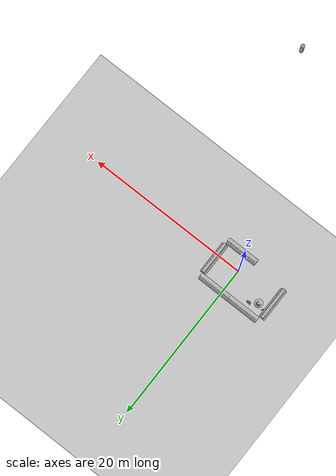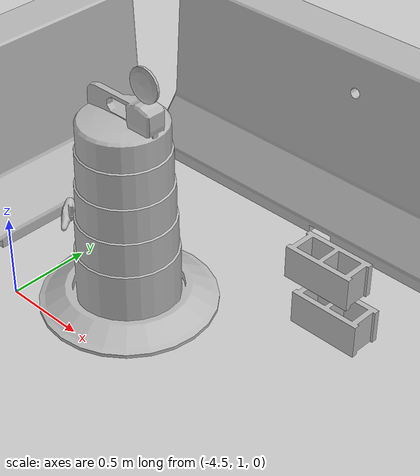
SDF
<sdf version="1.4">
 <world name="default">
  <light name="sun" type="directional">
   <pose>0 0 10 0 -0 0</pose>
   <diffuse>0.8 0.8 0.8 1</diffuse>
   <specular>0.2 0.2 0.2 1</specular>
   <attenuation>
    <range>1000</range>
    <constant>0.9</constant>
    <linear>0.01</linear>
    <quadratic>0.001</quadratic>
   </attenuation>
   <direction>-0.5 0.1 -0.9</direction>
  </light>
  <model name="ground_plane">
   <static>1</static>
   <link name="link">
    <collision name="collision">
     <geometry><plane><normal>0 0 1</normal><size>100 100</size></plane></geometry>
     <surface><friction><ode><mu>100</mu><mu2>50</mu2></ode></friction></surface>
    </collision>
    <visual name="visual">
     <cast_shadows>0</cast_shadows>
     <geometry><plane><normal>0 0 1</normal><size>100 100</size></plane></geometry>
     <material>
      <script><uri>file://media/materials/scripts/gazebo.material</uri><name>Gazebo/Grey</name></script>
     </material>
    </visual>
    <velocity_decay><linear>0</linear><angular>0</angular></velocity_decay>
   </link>
  </model>
  <physics type="ode">
   <max_step_size>0.01</max_step_size>
   <real_time_factor>1</real_time_factor>
   <real_time_update_rate>100</real_time_update_rate>
   <gravity>0 0 -9.8</gravity>
  </physics>
  <scene><ambient>0.4 0.4 0.4 1</ambient><background>0.7 0.7 0.7 1</background><shadows>1</shadows></scene>
  <model name="unit_cylinder_1">
   <pose>1.0 0.0 100.0 0.0 0.0 0.0</pose>
   <link name="link">
    <inertial>
     <mass>0.01</mass>
     <inertia><ixx>1</ixx><ixy>0</ixy><ixz>0</ixz><iyy>1</iyy><iyz>0</iyz><izz>1</izz></inertia>
    </inertial>
    <collision name="collision">
     <geometry><cylinder><radius>0.1</radius><length>1.00</length></cylinder></geometry>
    </collision>
    <visual name="visual">
     <geometry><cylinder><radius>0.1</radius><length>1.00</length></cylinder></geometry>
     <material>
      <script><uri>file://media/materials/scripts/gazebo.material</uri><name>Gazebo/Grey</name></script>
     </material>
    </visual>
    <velocity_decay><linear>0</linear><angular>0</angular></velocity_decay>
   </link>
   <static>0</static>
  </model>
  <model name="jersey_barrier">
   <static>1</static>
   <link name="link">
    <visual name="visual">
     <geometry><mesh><uri>model://jersey_barrier/meshes/jersey_barrier.dae</uri></mesh></geometry>
    </visual>
    <collision name="upright">
     <pose>0 0 0.5715 0 -0 0</pose>
     <geometry><box><size>4.06542 0.3063 1.143</size></box></geometry>
    </collision>
    <collision name="base">
     <pose>0 0 0.032258 0 -0 0</pose>
     <geometry><box><size>4.06542 0.8107 0.064516</size></box></geometry>
    </collision>
    <collision name="base2">
     <pose>0 0 0.1 0 -0 0</pose>
     <geometry><box><size>4.06542 0.65 0.1</size></box></geometry>
    </collision>
    <collision name="base3">
     <pose>0 0 0.2 0 -0 0</pose>
     <geometry><box><size>4.06542 0.5 0.1</size></box></geometry>
    </collision>
    <collision name="left-angle">
     <pose>0 -0.224 0.2401 0.9 -0 0</pose>
     <geometry><box><size>4.06542 0.5 0.064516</size></box></geometry>
    </collision>
    <collision name="right-angle">
     <pose>0 0.224 0.2401 -0.9 0 0</pose>
     <geometry><box><size>4.06542 0.5 0.064516</size></box></geometry>
    </collision>
    <velocity_decay><linear>0</linear><angular>0</angular></velocity_decay>
   </link>
   <pose>1 -2 0 0 -0 0</pose>
  </model>
  <model name="jersey_barrier_0">
   <static>1</static>
   <link name="link">
    <visual name="visual">
     <geometry><mesh><uri>model://jersey_barrier/meshes/jersey_barrier.dae</uri></mesh></geometry>
    </visual>
    <collision name="upright">
     <pose>0 0 0.5715 0 -0 0</pose>
     <geometry><box><size>4.06542 0.3063 1.143</size></box></geometry>
    </collision>
    <collision name="base">
     <pose>0 0 0.032258 0 -0 0</pose>
     <geometry><box><size>4.06542 0.8107 0.064516</size></box></geometry>
    </collision>
    <collision name="base2">
     <pose>0 0 0.1 0 -0 0</pose>
     <geometry><box><size>4.06542 0.65 0.1</size></box></geometry>
    </collision>
    <collision name="base3">
     <pose>0 0 0.2 0 -0 0</pose>
     <geometry><box><size>4.06542 0.5 0.1</size></box></geometry>
    </collision>
    <collision name="left-angle">
     <pose>0 -0.224 0.2401 0.9 -0 0</pose>
     <geometry><box><size>4.06542 0.5 0.064516</size></box></geometry>
    </collision>
    <collision name="right-angle">
     <pose>0 0.224 0.2401 -0.9 0 0</pose>
     <geometry><box><size>4.06542 0.5 0.064516</size></box></geometry>
    </collision>
    <velocity_decay><linear>0</linear><angular>0</angular></velocity_decay>
   </link>
   <pose>3 0.572542 0 0 0 -1.5708</pose>
  </model>
  <model name="jersey_barrier_1">
   <static>1</static>
   <link name="link">
    <visual name="visual">
     <geometry><mesh><uri>model://jersey_barrier/meshes/jersey_barrier.dae</uri></mesh></geometry>
    </visual>
    <collision name="upright">
     <pose>0 0 0.5715 0 -0 0</pose>
     <geometry><box><size>4.06542 0.3063 1.143</size></box></geometry>
    </collision>
    <collision name="base">
     <pose>0 0 0.032258 0 -0 0</pose>
     <geometry><box><size>4.06542 0.8107 0.064516</size></box></geometry>
    </collision>
    <collision name="base2">
     <pose>0 0 0.1 0 -0 0</pose>
     <geometry><box><size>4.06542 0.65 0.1</size></box></geometry>
    </collision>
    <collision name="base3">
     <pose>0 0 0.2 0 -0 0</pose>
     <geometry><box><size>4.06542 0.5 0.1</size></box></geometry>
    </collision>
    <collision name="left-angle">
     <pose>0 -0.224 0.2401 0.9 -0 0</pose>
     <geometry><box><size>4.06542 0.5 0.064516</size></box></geometry>
    </collision>
    <collision name="right-angle">
     <pose>0 0.224 0.2401 -0.9 0 0</pose>
     <geometry><box><size>4.06542 0.5 0.064516</size></box></geometry>
    </collision>
    <velocity_decay><linear>0</linear><angular>0</angular></velocity_decay>
   </link>
   <pose>1 3 0 0 -0 0</pose>
  </model>
  <model name="jersey_barrier_2">
   <static>1</static>
   <link name="link">
    <visual name="visual">
     <geometry><mesh><uri>model://jersey_barrier/meshes/jersey_barrier.dae</uri></mesh></geometry>
    </visual>
    <collision name="upright">
     <pose>0 0 0.5715 0 -0 0</pose>
     <geometry><box><size>4.06542 0.3063 1.143</size></box></geometry>
    </collision>
    <collision name="base">
     <pose>0 0 0.032258 0 -0 0</pose>
     <geometry><box><size>4.06542 0.8107 0.064516</size></box></geometry>
    </collision>
    <collision name="base2">
     <pose>0 0 0.1 0 -0 0</pose>
     <geometry><box><size>4.06542 0.65 0.1</size></box></geometry>
    </collision>
    <collision name="base3">
     <pose>0 0 0.2 0 -0 0</pose>
     <geometry><box><size>4.06542 0.5 0.1</size></box></geometry>
    </collision>
    <collision name="left-angle">
     <pose>0 -0.224 0.2401 0.9 -0 0</pose>
     <geometry><box><size>4.06542 0.5 0.064516</size></box></geometry>
    </collision>
    <collision name="right-angle">
     <pose>0 0.224 0.2401 -0.9 0 0</pose>
     <geometry><box><size>4.06542 0.5 0.064516</size></box></geometry>
    </collision>
    <velocity_decay><linear>0</linear><angular>0</angular></velocity_decay>
   </link>
   <pose>-3 3 0 0 -0 0</pose>
  </model>
  <model name="jersey_barrier_3">
   <static>1</static>
   <link name="link">
    <visual name="visual">
     <geometry><mesh><uri>model://jersey_barrier/meshes/jersey_barrier.dae</uri></mesh></geometry>
    </visual>
    <collision name="upright">
     <pose>0 0 0.5715 0 -0 0</pose>
     <geometry><box><size>4.06542 0.3063 1.143</size></box></geometry>
    </collision>
    <collision name="base">
     <pose>0 0 0.032258 0 -0 0</pose>
     <geometry><box><size>4.06542 0.8107 0.064516</size></box></geometry>
    </collision>
    <collision name="base2">
     <pose>0 0 0.1 0 -0 0</pose>
     <geometry><box><size>4.06542 0.65 0.1</size></box></geometry>
    </collision>
    <collision name="base3">
     <pose>0 0 0.2 0 -0 0</pose>
     <geometry><box><size>4.06542 0.5 0.1</size></box></geometry>
    </collision>
    <collision name="left-angle">
     <pose>0 -0.224 0.2401 0.9 -0 0</pose>
     <geometry><box><size>4.06542 0.5 0.064516</size></box></geometry>
    </collision>
    <collision name="right-angle">
     <pose>0 0.224 0.2401 -0.9 0 0</pose>
     <geometry><box><size>4.06542 0.5 0.064516</size></box></geometry>
    </collision>
    <velocity_decay><linear>0</linear><angular>0</angular></velocity_decay>
   </link>
   <pose>-5.28026 0.532423 0 0 -0 1.5708</pose>
  </model>
  <model name="Construction Barrel">
   <link name="link">
    <inertial>
     <pose>0 0 0.4 0 -0 0</pose>
     <mass>500</mass>
     <inertia><ixx>51.2096</ixx><iyy>51.2096</iyy><izz>25</izz><ixy>0</ixy><ixz>0</ixz><iyz>0</iyz></inertia>
    </inertial>
    <collision name="collision">
     <geometry><mesh><uri>model://construction_barrel/meshes/construction_barrel.dae</uri></mesh></geometry>
    </collision>
    <visual name="visual">
     <geometry><mesh><uri>model://construction_barrel/meshes/construction_barrel.dae</uri></mesh></geometry>
    </visual>
    <velocity_decay><linear>0</linear><angular>0</angular></velocity_decay>
   </link>
   <pose>-3.99999 1.41402 -9.2e-05 -9.3e-05 -0.000347 -0.000144</pose>
   <static>0</static>
  </model>
  <model name="cinder_block">
   <link name="link">
    <inertial>
     <pose>0 0 0.1016 0 -0 0</pose>
     <mass>5</mass>
     <inertia>
      <ixx>0.028705</ixx>
      <ixy>0</ixy>
      <iyy>0.073708</iyy>
      <ixz>0</ixz>
      <iyz>0</iyz>
      <izz>0.06908</izz>
     </inertia>
    </inertial>
    <visual name="visual">
     <geometry><mesh><uri>model://cinder_block/meshes/cinder_block.dae</uri></mesh></geometry>
    </visual>
    <collision name="left">
     <pose>0 -0.08465 0.1016 0 -0 0</pose>
     <geometry><box><size>0.43495 0.0339 0.2032</size></box></geometry>
     <surface><contact><ode><max_vel>0.1</max_vel><min_depth>0.001</min_depth></ode></contact></surface>
    </collision>
    <collision name="right">
     <pose>0 0.08465 0.1016 0 -0 0</pose>
     <geometry><box><size>0.43495 0.0339 0.2032</size></box></geometry>
     <surface><contact><ode><max_vel>0.1</max_vel><min_depth>0.001</min_depth></ode></contact></surface>
    </collision>
    <collision name="front">
     <pose>0.18625 0 0.1016 0 -0 0</pose>
     <geometry><box><size>0.0339 0.1354 0.203</size></box></geometry>
     <surface><contact><ode><max_vel>0.1</max_vel><min_depth>0.001</min_depth></ode></contact></surface>
    </collision>
    <collision name="middle">
     <pose>0 0 0.1016 0 -0 0</pose>
     <geometry><box><size>0.0339 0.1354 0.203</size></box></geometry>
     <surface><contact><ode><max_vel>0.1</max_vel><min_depth>0.001</min_depth></ode></contact></surface>
    </collision>
    <collision name="back">
     <pose>-0.18625 0 0.1016 0 -0 0</pose>
     <geometry><box><size>0.0339 0.1354 0.203</size></box></geometry>
     <surface><contact><ode><max_vel>0.1</max_vel><min_depth>0.001</min_depth></ode></contact></surface>
    </collision>
    <velocity_decay><linear>0</linear><angular>0</angular></velocity_decay>
   </link>
   <pose>-3 2 -0.000368 -0.005871 -0.000195 3e-05</pose>
   <static>0</static>
  </model>
  <model name="cinder_block_0">
   <link name="link">
    <inertial>
     <pose>0 0 0.1016 0 -0 0</pose>
     <mass>5</mass>
     <inertia>
      <ixx>0.028705</ixx>
      <ixy>0</ixy>
      <iyy>0.073708</iyy>
      <ixz>0</ixz>
      <iyz>0</iyz>
      <izz>0.06908</izz>
     </inertia>
    </inertial>
    <visual name="visual">
     <geometry><mesh><uri>model://cinder_block/meshes/cinder_block.dae</uri></mesh></geometry>
    </visual>
    <collision name="left">
     <pose>0 -0.08465 0.1016 0 -0 0</pose>
     <geometry><box><size>0.43495 0.0339 0.2032</size></box></geometry>
     <surface><contact><ode><max_vel>0.1</max_vel><min_depth>0.001</min_depth></ode></contact></surface>
    </collision>
    <collision name="right">
     <pose>0 0.08465 0.1016 0 -0 0</pose>
     <geometry><box><size>0.43495 0.0339 0.2032</size></box></geometry>
     <surface><contact><ode><max_vel>0.1</max_vel><min_depth>0.001</min_depth></ode></contact></surface>
    </collision>
    <collision name="front">
     <pose>0.18625 0 0.1016 0 -0 0</pose>
     <geometry><box><size>0.0339 0.1354 0.203</size></box></geometry>
     <surface><contact><ode><max_vel>0.1</max_vel><min_depth>0.001</min_depth></ode></contact></surface>
    </collision>
    <collision name="middle">
     <pose>0 0 0.1016 0 -0 0</pose>
     <geometry><box><size>0.0339 0.1354 0.203</size></box></geometry>
     <surface><contact><ode><max_vel>0.1</max_vel><min_depth>0.001</min_depth></ode></contact></surface>
    </collision>
    <collision name="back">
     <pose>-0.18625 0 0.1016 0 -0 0</pose>
     <geometry><box><size>0.0339 0.1354 0.203</size></box></geometry>
     <surface><contact><ode><max_vel>0.1</max_vel><min_depth>0.001</min_depth></ode></contact></surface>
    </collision>
    <velocity_decay><linear>0</linear><angular>0</angular></velocity_decay>
   </link>
   <pose>-3.12368 2.07671 0.202153 -0.006164 -0.000795 -0.000411</pose>
   <static>0</static>
  </model>
  <model name="drill">
   <link name="link">
    <inertial>
     <pose>-0.00637 -0.008 0.13254 0 -0 0</pose>
     <inertia>
      <ixx>0.0133113</ixx>
      <ixy>-0.00030365</ixy>
      <ixz>-0.00034148</ixz>
      <iyy>0.0115766</iyy>
      <iyz>0.00088073</iyz>
      <izz>0.00378028</izz>
     </inertia>
     <mass>1.50252</mass>
    </inertial>
    <collision name="collision">
     <pose>0 0 -0.09 0 -0 0</pose>
     <geometry><mesh><uri>model://cordless_drill/meshes/cordless_drill.stl</uri></mesh></geometry>
     <surface><contact><ode><max_vel>0.1</max_vel><min_depth>0.001</min_depth></ode></contact></surface>
    </collision>
    <visual name="visual">
     <pose>0 0 -0.09 0 -0 0</pose>
     <geometry><mesh><uri>model://cordless_drill/meshes/cordless_drill.dae</uri></mesh></geometry>
    </visual>
    <velocity_decay><linear>0</linear><angular>0</angular></velocity_decay>
   </link>
   <pose>-4.6543 1.81346 0.040165 -1.41756 1.18746 2.50916</pose>
   <static>0</static>
  </model>
 </world>
</sdf>
